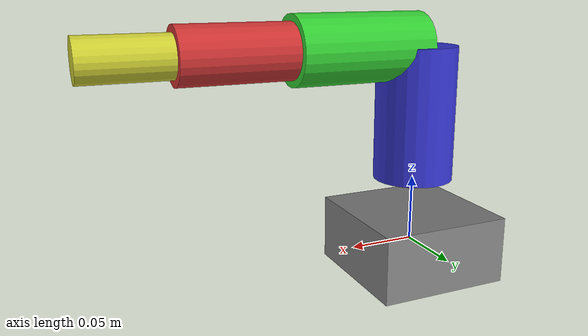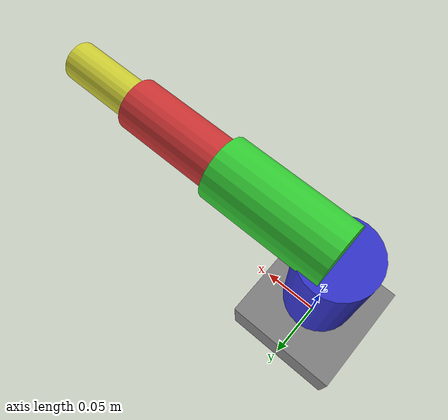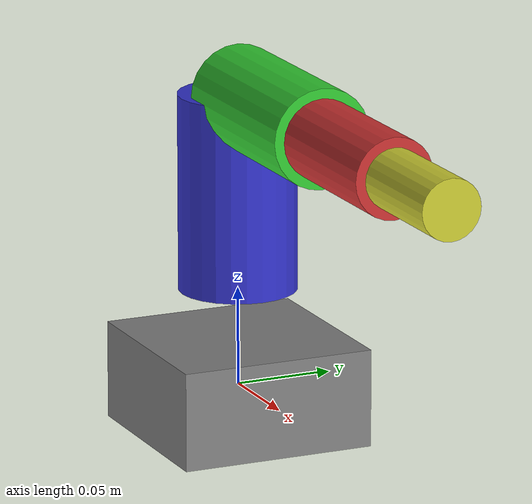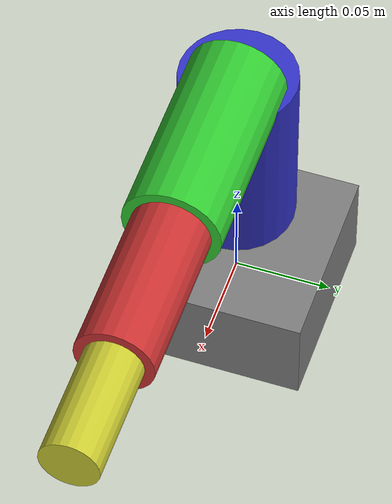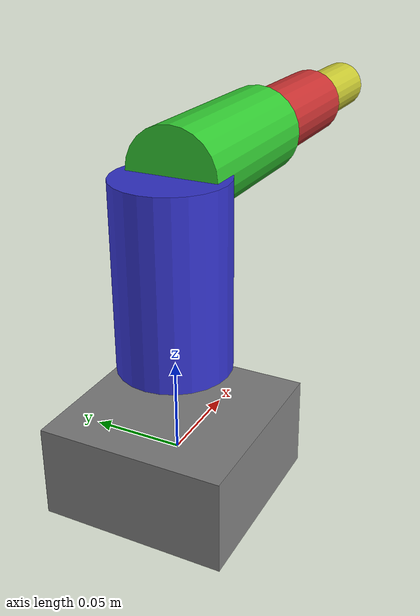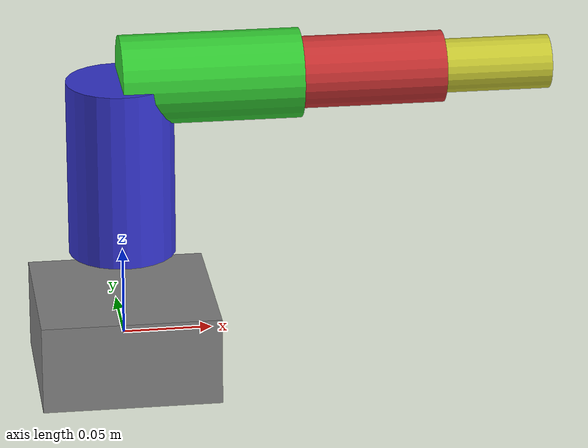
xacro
<?xml version="1.0"?>
<!-- Multi-motor test URDF for 4 MyActuator RMD motors -->
<robot xmlns:xacro="http://www.ros.org/wiki/xacro" name="multi_motor_test">

    <!-- Arguments -->
    <xacro:arg name="can_interface" default="can0"/>
    <xacro:arg name="motor1_id" default="1"/>
    <xacro:arg name="motor2_id" default="2"/>
    <xacro:arg name="motor3_id" default="3"/>
    <xacro:arg name="motor4_id" default="4"/>

    <!-- Base link -->
    <link name="base_link">
        <visual>
            <geometry>
                <box size="0.1 0.1 0.05"/>
            </geometry>
            <material name="gray">
                <color rgba="0.5 0.5 0.5 1.0"/>
            </material>
        </visual>
    </link>

    <!-- Joint 1 -->
    <joint name="joint_1" type="revolute">
        <parent link="base_link"/>
        <child link="link_1"/>
        <origin xyz="0 0 0.05" rpy="0 0 0"/>
        <axis xyz="0 0 1"/>
        <limit lower="-3.14159" upper="3.14159" effort="100" velocity="6.28"/>
    </joint>

    <link name="link_1">
        <visual>
            <origin xyz="0 0 0.05" rpy="0 0 0"/>
            <geometry>
                <cylinder radius="0.03" length="0.1"/>
            </geometry>
            <material name="blue">
                <color rgba="0.2 0.2 0.8 1.0"/>
            </material>
        </visual>
    </link>

    <!-- Joint 2 -->
    <joint name="joint_2" type="revolute">
        <parent link="link_1"/>
        <child link="link_2"/>
        <origin xyz="0 0 0.1" rpy="0 0 0"/>
        <axis xyz="0 1 0"/>
        <limit lower="-1.57" upper="1.57" effort="100" velocity="6.28"/>
    </joint>

    <link name="link_2">
        <visual>
            <origin xyz="0.05 0 0" rpy="0 1.5708 0"/>
            <geometry>
                <cylinder radius="0.025" length="0.1"/>
            </geometry>
            <material name="green">
                <color rgba="0.2 0.8 0.2 1.0"/>
            </material>
        </visual>
    </link>

    <!-- Joint 3 -->
    <joint name="joint_3" type="revolute">
        <parent link="link_2"/>
        <child link="link_3"/>
        <origin xyz="0.1 0 0" rpy="0 0 0"/>
        <axis xyz="0 1 0"/>
        <limit lower="-1.57" upper="1.57" effort="100" velocity="6.28"/>
    </joint>

    <link name="link_3">
        <visual>
            <origin xyz="0.04 0 0" rpy="0 1.5708 0"/>
            <geometry>
                <cylinder radius="0.02" length="0.08"/>
            </geometry>
            <material name="red">
                <color rgba="0.8 0.2 0.2 1.0"/>
            </material>
        </visual>
    </link>

    <!-- Joint 4 -->
    <joint name="joint_4" type="revolute">
        <parent link="link_3"/>
        <child link="link_4"/>
        <origin xyz="0.08 0 0" rpy="0 0 0"/>
        <axis xyz="0 1 0"/>
        <limit lower="-1.57" upper="1.57" effort="100" velocity="6.28"/>
    </joint>

    <link name="link_4">
        <visual>
            <origin xyz="0.03 0 0" rpy="0 1.5708 0"/>
            <geometry>
                <cylinder radius="0.015" length="0.06"/>
            </geometry>
            <material name="yellow">
                <color rgba="0.8 0.8 0.2 1.0"/>
            </material>
        </visual>
    </link>

    <!-- ros2_control hardware interface -->
    <ros2_control name="multi_motor_hardware" type="system">
        <hardware>
            <plugin>myactuator_hardware/MultiMotorHardwareInterface</plugin>
            <param name="ifname">$(arg can_interface)</param>
        </hardware>

        <joint name="joint_1">
            <param name="actuator_id">$(arg motor1_id)</param>
            <param name="torque_constant">0.32</param>
            <command_interface name="position"/>
            <command_interface name="velocity"/>
            <command_interface name="effort"/>
            <state_interface name="position">
                <param name="initial_value">0.0</param>
            </state_interface>
            <state_interface name="velocity"/>
            <state_interface name="effort"/>
        </joint>

        <joint name="joint_2">
            <param name="actuator_id">$(arg motor2_id)</param>
            <param name="torque_constant">0.32</param>
            <command_interface name="position"/>
            <command_interface name="velocity"/>
            <command_interface name="effort"/>
            <state_interface name="position">
                <param name="initial_value">0.0</param>
            </state_interface>
            <state_interface name="velocity"/>
            <state_interface name="effort"/>
        </joint>

        <joint name="joint_3">
            <param name="actuator_id">$(arg motor3_id)</param>
            <param name="torque_constant">0.32</param>
            <command_interface name="position"/>
            <command_interface name="velocity"/>
            <command_interface name="effort"/>
            <state_interface name="position">
                <param name="initial_value">0.0</param>
            </state_interface>
            <state_interface name="velocity"/>
            <state_interface name="effort"/>
        </joint>

        <joint name="joint_4">
            <param name="actuator_id">$(arg motor4_id)</param>
            <param name="torque_constant">0.32</param>
            <command_interface name="position"/>
            <command_interface name="velocity"/>
            <command_interface name="effort"/>
            <state_interface name="position">
                <param name="initial_value">0.0</param>
            </state_interface>
            <state_interface name="velocity"/>
            <state_interface name="effort"/>
        </joint>
    </ros2_control>

</robot>
